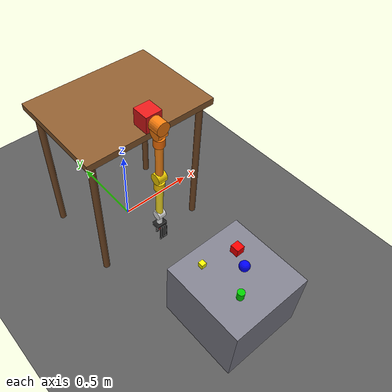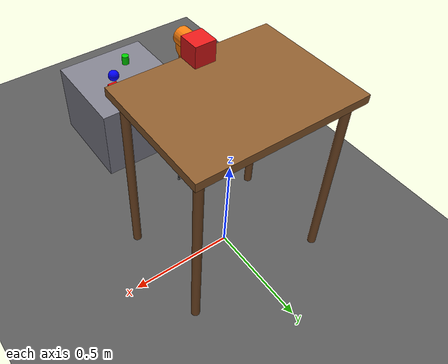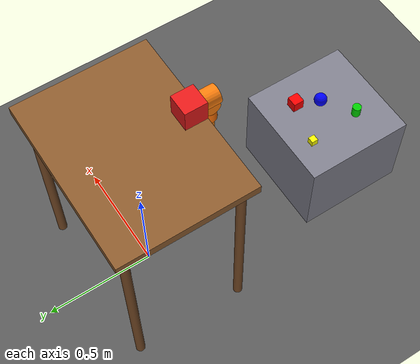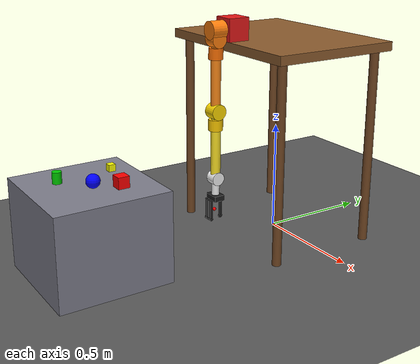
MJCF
<?xml version="1.0" encoding="utf-8"?>
<mujoco model="rooky_arm_full">
  <compiler angle="degree"/>
  <option gravity="0 0 -9.81" timestep="0.002"/>

  <visual>
    <headlight ambient="0.3 0.3 0.3"/>
  </visual>

  <default>
    <geom contype="1" conaffinity="1"/>
    <joint damping="2" armature="0.01"/>
  </default>

  <worldbody>
    <light pos="0.5 -0.5 2.0" dir="-0.2 0.2 -1"
           diffuse="0.8 0.8 0.8" specular="0.3 0.3 0.3"/>
    <light pos="-0.5 0.5 1.5" dir="0.2 -0.2 -1"
           diffuse="0.4 0.4 0.4"/>

    <!-- ======== ПОЛ ======== -->
    <geom name="floor" type="plane" size="3 3 0.01"
          rgba="0.35 0.35 0.35 1"/>

    <!-- ======== СТОЛ ======== -->
    <geom name="table_top" type="box" size="0.40 0.30 0.02"
          pos="0 0 0.90" rgba="0.55 0.36 0.18 1"/>
    <geom name="leg_FL" type="cylinder" size="0.02 0.44"
          pos=" 0.35 -0.25 0.44" rgba="0.45 0.28 0.14 1"/>
    <geom name="leg_FR" type="cylinder" size="0.02 0.44"
          pos="-0.35 -0.25 0.44" rgba="0.45 0.28 0.14 1"/>
    <geom name="leg_BL" type="cylinder" size="0.02 0.44"
          pos=" 0.35  0.25 0.44" rgba="0.45 0.28 0.14 1"/>
    <geom name="leg_BR" type="cylinder" size="0.02 0.44"
          pos="-0.35  0.25 0.44" rgba="0.45 0.28 0.14 1"/>

    <geom name="platform_box" type="box"
          size="0.25 0.25 0.20"
          pos="0 -0.95 0.20"
          rgba="0.50 0.50 0.55 1" mass="20"/>

    <!-- ======== КРАСНЫЙ БОКС (основание руки) ======== -->
    <body name="base_mount" pos="0 -0.25 0.97">
      <geom name="base_box" type="box" size="0.05 0.05 0.05"
            rgba="0.90 0.10 0.10 1" mass="2"/>

      <geom name="bracket" type="capsule" size="0.018"
            fromto="0 0 0   0 -0.05 0"
            rgba="0.35 0.35 0.35 1" mass="0.1"
            contype="0" conaffinity="0"/>

      <!-- ======== СУСТАВ 1 — База, Pitch ======== -->
      <body name="link1" pos="0 -0.05 0">
        <inertial pos="0 0 -0.015" mass="0.5"
                  diaginertia="0.001 0.001 0.0004"/>

        <joint name="J1_base_pitch" type="hinge"
               axis="0 1 0" range="-133 133" damping="3"/>

        <geom name="J1_hinge_viz" type="cylinder"
              pos="0 -0.035 0"
              size="0.04 0.035" euler="90 0 0"
              rgba="1.0 0.50 0.05 1"
              contype="0" conaffinity="0"/>

        <geom name="link1_arm" type="capsule" size="0.022"
              fromto="0 -0.035 -0.01  0 -0.035 -0.04"
              rgba="1.0 0.55 0.10 0.95"/>

        <!-- ======== СУСТАВ 2A — Плечо, Pitch ======== -->
        <body name="shoulder_pitch" pos="0 -0.035 -0.04">
          <inertial pos="0 0 -0.02" mass="0.3"
                    diaginertia="0.0005 0.0005 0.0003"/>

          <joint name="J2_shoulder_pitch" type="hinge"
                 axis="1 0 0" range="-81.5 81.5" damping="3"/>

          <geom name="J2a_hinge_viz" type="cylinder"
                size="0.035 0.030" euler="0 90 0"
                rgba="1.0 0.50 0.05 1"
                contype="0" conaffinity="0"/>

          <geom name="shoulder_bridge" type="capsule" size="0.020"
                fromto="0 0 -0.01  0 0 -0.06"
                rgba="1.0 0.55 0.10 0.95"/>

          <!-- ======== СУСТАВ 2Б — Плечо, Roll ======== -->
          <body name="shoulder_roll" pos="0 0 -0.06">
            <inertial pos="0 0 -0.10" mass="0.5"
                      diaginertia="0.003 0.003 0.0004"/>

            <joint name="J2_shoulder_roll" type="hinge"
                   axis="0 0 1" range="-86.5 86.5" damping="2"/>

            <geom name="J2b_roll_viz" type="cylinder"
                  size="0.032 0.025"
                  rgba="1.0 0.45 0.02 1"
                  contype="0" conaffinity="0"/>

            <geom name="link2_arm" type="capsule" size="0.022"
                  fromto="0 0 -0.01  0 0 -0.256"
                  rgba="1.0 0.55 0.10 0.95"/>

            <!-- ======== СУСТАВ 3A — Локоть, Pitch ======== -->
            <body name="elbow_pitch" pos="0 0 -0.256">
              <inertial pos="0 0 -0.02" mass="0.3"
                        diaginertia="0.0005 0.0005 0.0003"/>

              <joint name="J3_elbow_pitch" type="hinge"
                     axis="1 0 0" range="-85 85" damping="3"/>

              <geom name="J3a_hinge_viz" type="cylinder"
                    size="0.035 0.030" euler="0 90 0"
                    rgba="1.0 0.85 0.0 1"
                    contype="0" conaffinity="0"/>

              <geom name="elbow_bridge" type="capsule" size="0.020"
                    fromto="0 0 -0.01  0 0 -0.06"
                    rgba="1.0 0.90 0.15 0.95"/>

              <!-- ======== СУСТАВ 3Б — Предплечье, Roll ======== -->
              <body name="forearm_roll" pos="0 0 -0.06">
                <inertial pos="0 0 -0.10" mass="0.4"
                          diaginertia="0.003 0.003 0.0004"/>

                <joint name="J3_forearm_roll" type="hinge"
                       axis="0 0 1" range="-86 86" damping="2"/>

                <geom name="J3b_roll_viz" type="cylinder"
                      size="0.032 0.025"
                      rgba="1.0 0.80 0.0 1"
                      contype="0" conaffinity="0"/>

                <geom name="link3_arm" type="capsule" size="0.022"
                      fromto="0 0 -0.01  0 0 -0.249"
                      rgba="1.0 0.90 0.15 0.95"/>

                <!-- ======== СУСТАВ 4 — Запястье, Pitch ======== -->
                <body name="wrist_pitch" pos="0 0 -0.249">
                  <inertial pos="0 0 -0.045" mass="0.2"
                            diaginertia="0.0002 0.0002 0.0001"/>

                  <joint name="J4_wrist_pitch" type="hinge"
                         axis="1 0 0" range="-25.75 25.75" damping="2"/>

                  <geom name="J4_hinge_viz" type="cylinder"
                        size="0.030 0.025" euler="0 90 0"
                        rgba="0.95 0.95 0.95 1"
                        contype="0" conaffinity="0"/>

                  <geom name="link4_arm" type="capsule" size="0.018"
                        fromto="0 0 -0.01  0 0 -0.089"
                        rgba="0.95 0.95 0.95 0.95"/>

                  <!-- ======== СУСТАВ 5 — Схват ======== -->
                  <body name="gripper_base" pos="0 0 -0.089">
                    <inertial pos="0 0 -0.02" mass="0.15"
                              diaginertia="0.0001 0.0001 0.00005"/>

                    <!-- Ладонь -->
                    <geom name="palm" type="box"
                          size="0.035 0.025 0.012"
                          rgba="0.12 0.12 0.12 1"/>

                    <!-- ★ TCP — точка инструмента (ДОБАВЛЕНО) ★ -->
                    <site name="tcp" pos="0 -0.005 -0.06"
                          size="0.008" rgba="1 0 0 1"/>

                    <!-- ====== БОЛЬШОЙ ПАЛЕЦ (неподвижный) ====== -->
                    <geom name="thumb" type="capsule" size="0.008"
                          fromto="0 0.025 -0.012   0 0.025 -0.097"
                          rgba="0.12 0.12 0.12 1"/>
                    <geom name="thumb_tip" type="sphere" size="0.010"
                          pos="0 0.025 -0.097"
                          rgba="0.12 0.12 0.12 1"/>

                    <!-- ====== 4 ПАЛЬЦА (подвижные) ====== -->
                    <body name="fingers" pos="0 -0.035 -0.012">
                      <inertial pos="0 0 -0.04" mass="0.1"
                                diaginertia="0.00008 0.00008 0.00002"/>

                      <joint name="J5_grip" type="hinge"
                             axis="1 0 0" range="-74.5 74.5" damping="1"/>

                      <geom name="finger_1" type="capsule" size="0.006"
                            fromto="-0.021 0 0   -0.021 0 -0.085"
                            rgba="0.12 0.12 0.12 1"/>
                      <geom name="finger_1_tip" type="sphere" size="0.008"
                            pos="-0.021 0 -0.085"
                            rgba="0.12 0.12 0.12 1"/>

                      <geom name="finger_2" type="capsule" size="0.006"
                            fromto="-0.007 0 0   -0.007 0 -0.085"
                            rgba="0.12 0.12 0.12 1"/>
                      <geom name="finger_2_tip" type="sphere" size="0.008"
                            pos="-0.007 0 -0.085"
                            rgba="0.12 0.12 0.12 1"/>

                      <geom name="finger_3" type="capsule" size="0.006"
                            fromto="0.007 0 0   0.007 0 -0.085"
                            rgba="0.12 0.12 0.12 1"/>
                      <geom name="finger_3_tip" type="sphere" size="0.008"
                            pos="0.007 0 -0.085"
                            rgba="0.12 0.12 0.12 1"/>

                      <geom name="finger_4" type="capsule" size="0.006"
                            fromto="0.021 0 0   0.021 0 -0.085"
                            rgba="0.12 0.12 0.12 1"/>
                      <geom name="finger_4_tip" type="sphere" size="0.008"
                            pos="0.021 0 -0.085"
                            rgba="0.12 0.12 0.12 1"/>
                    </body>
                  </body>
                </body>
              </body>
            </body>
          </body>
        </body>
      </body>
    </body>

    <!-- ★★★ ОБЪЕКТЫ СЦЕНЫ — на боксе-подставке ★★★
         Верхняя грань бокса: z = 0.40
         Площадка: x ∈ [−0.25, 0.25],  y ∈ [−1.20, −0.70] -->

    <body name="red_cube" pos="0.10 -0.85 0.425">
      <freejoint/>
      <geom name="red_cube_geom" type="box"
            size="0.025 0.025 0.025" mass="0.1"
            rgba="1 0 0 1"/>
    </body>

    <body name="green_cylinder" pos="-0.08 -1.05 0.425">
      <freejoint/>
      <geom name="green_cyl_geom" type="cylinder"
            size="0.02 0.025" mass="0.08"
            rgba="0 0.8 0 1"/>
    </body>

    <body name="blue_sphere" pos="0.05 -0.95 0.43">
      <freejoint/>
      <geom name="blue_sph_geom" type="sphere"
            size="0.03" mass="0.05"
            rgba="0 0 1 1"/>
    </body>

    <body name="yellow_cube" pos="-0.10 -0.80 0.415">
      <freejoint/>
      <geom name="yellow_cube_geom" type="box"
            size="0.015 0.015 0.015" mass="0.06"
            rgba="1 1 0 1"/>
    </body>

    <!-- ★★★ КАМЕРЫ ★★★ -->
    <!-- Обзорная: вид сбоку-сверху, охватывает стол + бокс -->
    <camera name="overview_cam"
            pos="1.5 -1.5 1.8"
            xyaxes="0.63 0.78 0 -0.35 0.28 0.89"
            fovy="55"/>

    <!-- Рабочая: вид сверху на бокс с деталями -->
    <camera name="work_cam"
            pos="0 -0.95 1.8"
            xyaxes="1 0 0 0 1 0"
            fovy="40"/>

  </worldbody>

  <!-- ======== ПРИВОДЫ ======== -->
  <!--
    ВАЖНО: compiler angle="degree" → ctrlrange тоже в ГРАДУСАХ
    (MuJoCo >= 2.3 конвертирует автоматически).
    Значения data.ctrl в рантайме — всегда в РАДИАНАХ.
  -->
<actuator>
    <position name="motor_J1" joint="J1_base_pitch"
              kp="500" ctrlrange="-25 133" ctrllimited="true"/>
    <position name="motor_J2_pitch" joint="J2_shoulder_pitch"
              kp="500" ctrlrange="-81.5 81.5" ctrllimited="true"/>
    <position name="motor_J2_roll" joint="J2_shoulder_roll"
              kp="500" ctrlrange="-86.5 86.5" ctrllimited="true"/>
    <position name="motor_J3_pitch" joint="J3_elbow_pitch"
              kp="500" ctrlrange="0 80" ctrllimited="true"/>
    <position name="motor_J3_roll" joint="J3_forearm_roll"
              kp="500" ctrlrange="-86 86" ctrllimited="true"/>
    <position name="motor_J4_wrist" joint="J4_wrist_pitch"
              kp="100" ctrlrange="-25.75 25.75" ctrllimited="true"/>
    <position name="motor_J5_grip" joint="J5_grip"
              kp="80" ctrlrange="-74.5 74.5" ctrllimited="true"/>
</actuator>
  <!-- ★★★ СЕНСОРЫ (ДОБАВЛЕНО) ★★★ -->
  <sensor>
    <jointpos name="sens_pos_1" joint="J1_base_pitch"/>
    <jointpos name="sens_pos_2" joint="J2_shoulder_pitch"/>
    <jointpos name="sens_pos_3" joint="J2_shoulder_roll"/>
    <jointpos name="sens_pos_4" joint="J3_elbow_pitch"/>
    <jointpos name="sens_pos_5" joint="J3_forearm_roll"/>
    <jointpos name="sens_pos_6" joint="J4_wrist_pitch"/>

    <jointvel name="sens_vel_1" joint="J1_base_pitch"/>
    <jointvel name="sens_vel_2" joint="J2_shoulder_pitch"/>
    <jointvel name="sens_vel_3" joint="J2_shoulder_roll"/>
    <jointvel name="sens_vel_4" joint="J3_elbow_pitch"/>
    <jointvel name="sens_vel_5" joint="J3_forearm_roll"/>
    <jointvel name="sens_vel_6" joint="J4_wrist_pitch"/>

    <actuatorfrc name="sens_frc_1" actuator="motor_J1"/>
    <actuatorfrc name="sens_frc_2" actuator="motor_J2_pitch"/>
    <actuatorfrc name="sens_frc_3" actuator="motor_J2_roll"/>
    <actuatorfrc name="sens_frc_4" actuator="motor_J3_pitch"/>
    <actuatorfrc name="sens_frc_5" actuator="motor_J3_roll"/>
    <actuatorfrc name="sens_frc_6" actuator="motor_J4_wrist"/>

    <framepos  name="tcp_pos"  objtype="site" objname="tcp"/>
    <framequat name="tcp_quat" objtype="site" objname="tcp"/>
  </sensor>
</mujoco>
